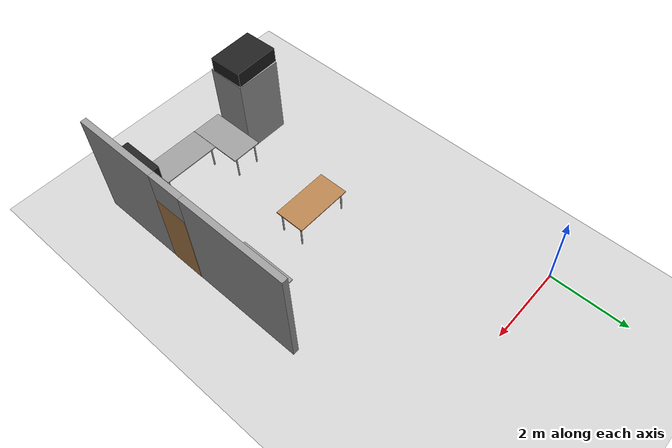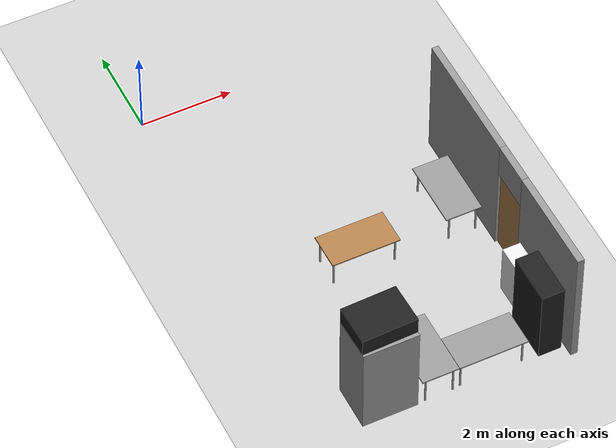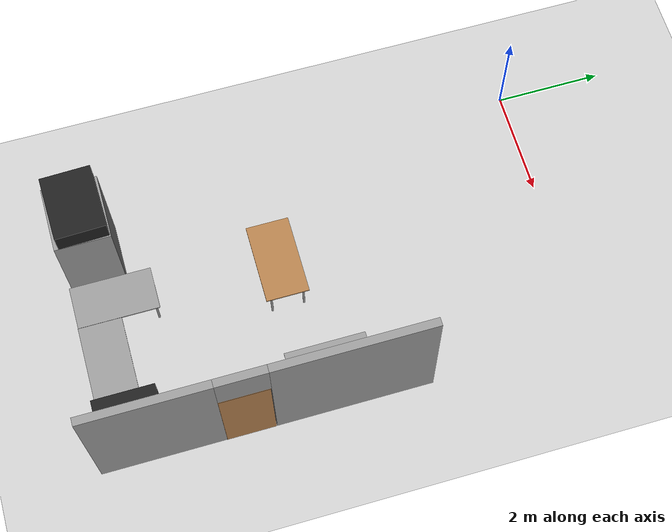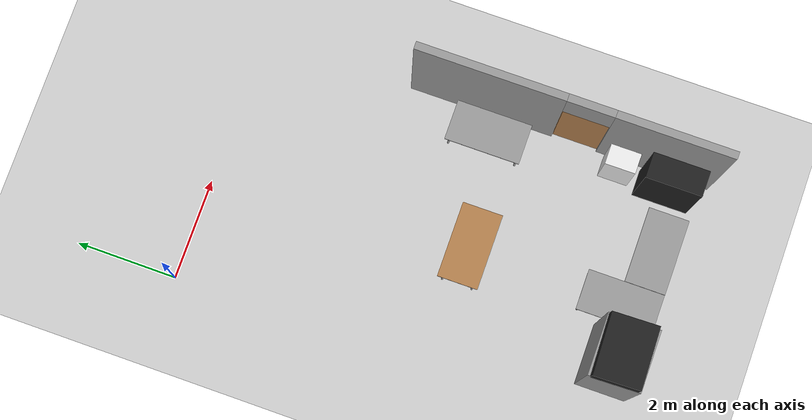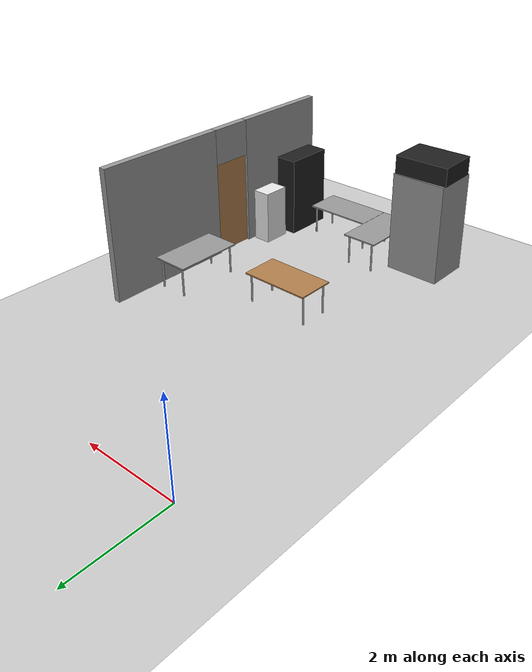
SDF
<sdf version="1.6">
 <world name="default">
  <model name="ground_plane">
   <static>1</static>
   <link name="link">
    <collision name="collision">
     <geometry><plane><normal>0 0 1</normal><size>100 100</size></plane></geometry>
     <surface>
      <contact><collide_bitmask>65535</collide_bitmask></contact>
      <friction><ode><mu>100</mu><mu2>50</mu2></ode></friction>
     </surface>
    </collision>
    <visual name="visual">
     <cast_shadows>0</cast_shadows>
     <geometry><plane><normal>0 0 1</normal><size>100 100</size></plane></geometry>
     <material>
      <script><uri>file://media/materials/scripts/gazebo.material</uri><name>Gazebo/Grey</name></script>
     </material>
    </visual>
   </link>
  </model>
  <model name="nrsl">
   <link name="Wall_7">
    <pose>5.41 -2.97 0 0 -0 1.5708</pose>
    <visual name="Wall_7_Visual_0">
     <pose>-1.90776 0 1.45 0 -0 0</pose>
     <geometry><box><size>2.27448 0.15 2.9</size></box></geometry>
     <material>
      <script><uri>file://media/materials/scripts/gazebo.material</uri><name>Gazebo/Grey</name></script>
      <ambient>1 1 1 1</ambient>
     </material>
     <meta><layer>0</layer></meta>
    </visual>
    <visual name="Wall_7_Visual_1">
     <pose>1.59424 0 1.45 0 -0 0</pose>
     <geometry><box><size>2.90152 0.15 2.9</size></box></geometry>
     <material>
      <script><uri>file://media/materials/scripts/gazebo.material</uri><name>Gazebo/Grey</name></script>
      <ambient>1 1 1 1</ambient>
     </material>
     <meta><layer>0</layer></meta>
    </visual>
    <visual name="Wall_7_Visual_2">
     <pose>-0.313519 0 2.504 0 -0 0</pose>
     <geometry><box><size>0.914 0.15 0.792</size></box></geometry>
     <material>
      <script><uri>file://media/materials/scripts/gazebo.material</uri><name>Gazebo/Grey</name></script>
      <ambient>1 1 1 1</ambient>
     </material>
     <meta><layer>0</layer></meta>
    </visual>
    <collision name="Wall_7_Collision_0">
     <pose>-1.90776 0 1.45 0 -0 0</pose>
     <geometry><box><size>2.27448 0.15 2.9</size></box></geometry>
     <surface>
      <friction>
       <ode><mu>1</mu><mu2>1</mu2><fdir1>0 0 0</fdir1><slip1>0</slip1><slip2>0</slip2></ode>
       <torsional>
        <coefficient>1</coefficient>
        <patch_radius>0</patch_radius>
        <surface_radius>0</surface_radius>
        <use_patch_radius>1</use_patch_radius>
        <ode><slip>0</slip></ode>
       </torsional>
      </friction>
      <bounce><restitution_coefficient>0</restitution_coefficient><threshold>1e+06</threshold></bounce>
      <contact>
       <collide_without_contact>0</collide_without_contact>
       <collide_without_contact_bitmask>1</collide_without_contact_bitmask>
       <collide_bitmask>1</collide_bitmask>
       <ode>
        <soft_cfm>0</soft_cfm>
        <soft_erp>0.2</soft_erp>
        <kp>1e+13</kp>
        <kd>1</kd>
        <max_vel>0.01</max_vel>
        <min_depth>0</min_depth>
       </ode>
       <bullet>
        <split_impulse>1</split_impulse>
        <split_impulse_penetration_threshold>-0.01</split_impulse_penetration_threshold>
        <soft_cfm>0</soft_cfm>
        <soft_erp>0.2</soft_erp>
        <kp>1e+13</kp>
        <kd>1</kd>
       </bullet>
      </contact>
     </surface>
    </collision>
    <collision name="Wall_7_Collision_1">
     <pose>1.59424 0 1.45 0 -0 0</pose>
     <geometry><box><size>2.90152 0.15 2.9</size></box></geometry>
     <surface>
      <friction>
       <ode><mu>1</mu><mu2>1</mu2><fdir1>0 0 0</fdir1><slip1>0</slip1><slip2>0</slip2></ode>
       <torsional>
        <coefficient>1</coefficient>
        <patch_radius>0</patch_radius>
        <surface_radius>0</surface_radius>
        <use_patch_radius>1</use_patch_radius>
        <ode><slip>0</slip></ode>
       </torsional>
      </friction>
      <bounce><restitution_coefficient>0</restitution_coefficient><threshold>1e+06</threshold></bounce>
      <contact>
       <collide_without_contact>0</collide_without_contact>
       <collide_without_contact_bitmask>1</collide_without_contact_bitmask>
       <collide_bitmask>1</collide_bitmask>
       <ode>
        <soft_cfm>0</soft_cfm>
        <soft_erp>0.2</soft_erp>
        <kp>1e+13</kp>
        <kd>1</kd>
        <max_vel>0.01</max_vel>
        <min_depth>0</min_depth>
       </ode>
       <bullet>
        <split_impulse>1</split_impulse>
        <split_impulse_penetration_threshold>-0.01</split_impulse_penetration_threshold>
        <soft_cfm>0</soft_cfm>
        <soft_erp>0.2</soft_erp>
        <kp>1e+13</kp>
        <kd>1</kd>
       </bullet>
      </contact>
     </surface>
    </collision>
    <collision name="Wall_7_Collision_2">
     <pose>-0.313519 0 2.504 0 -0 0</pose>
     <geometry><box><size>0.914 0.15 0.792</size></box></geometry>
     <surface>
      <friction>
       <ode><mu>1</mu><mu2>1</mu2><fdir1>0 0 0</fdir1><slip1>0</slip1><slip2>0</slip2></ode>
       <torsional>
        <coefficient>1</coefficient>
        <patch_radius>0</patch_radius>
        <surface_radius>0</surface_radius>
        <use_patch_radius>1</use_patch_radius>
        <ode><slip>0</slip></ode>
       </torsional>
      </friction>
      <bounce><restitution_coefficient>0</restitution_coefficient><threshold>1e+06</threshold></bounce>
      <contact>
       <collide_without_contact>0</collide_without_contact>
       <collide_without_contact_bitmask>1</collide_without_contact_bitmask>
       <collide_bitmask>1</collide_bitmask>
       <ode>
        <soft_cfm>0</soft_cfm>
        <soft_erp>0.2</soft_erp>
        <kp>1e+13</kp>
        <kd>1</kd>
        <max_vel>0.01</max_vel>
        <min_depth>0</min_depth>
       </ode>
       <bullet>
        <split_impulse>1</split_impulse>
        <split_impulse_penetration_threshold>-0.01</split_impulse_penetration_threshold>
        <soft_cfm>0</soft_cfm>
        <soft_erp>0.2</soft_erp>
        <kp>1e+13</kp>
        <kd>1</kd>
       </bullet>
      </contact>
     </surface>
    </collision>
   </link>
   <static>1</static>
   <pose>-0.282297 -3.10716 0 0 -0 0</pose>
  </model>
  <model name="guizi_1_0">
   <link name="link">
    <inertial>
     <mass>1</mass>
     <inertia>
      <ixx>0.166667</ixx>
      <ixy>0</ixy>
      <ixz>0</ixz>
      <iyy>0.166667</iyy>
      <iyz>0</iyz>
      <izz>0.166667</izz>
     </inertia>
    </inertial>
    <visual name="visual">
     <geometry><box><size>0.5 1.1 1.8</size></box></geometry>
     <material>
      <script><name>Gazebo/Black</name><uri>file://media/materials/scripts/gazebo.material</uri></script>
     </material>
     <pose>0 0 0.9 0 -0 0</pose>
    </visual>
    <collision name="collision">
     <pose>0 0 0.9 0 -0 0</pose>
     <geometry><box><size>0.5 1.1 1.8</size></box></geometry>
     <surface>
      <friction>
       <ode><mu>1</mu><mu2>1</mu2><fdir1>0 0 0</fdir1><slip1>0</slip1><slip2>0</slip2></ode>
       <torsional>
        <coefficient>1</coefficient>
        <patch_radius>0</patch_radius>
        <surface_radius>0</surface_radius>
        <use_patch_radius>1</use_patch_radius>
        <ode><slip>0</slip></ode>
       </torsional>
      </friction>
      <bounce><restitution_coefficient>0</restitution_coefficient><threshold>1e+06</threshold></bounce>
      <contact>
       <collide_without_contact>0</collide_without_contact>
       <collide_without_contact_bitmask>1</collide_without_contact_bitmask>
       <collide_bitmask>1</collide_bitmask>
       <ode>
        <soft_cfm>0</soft_cfm>
        <soft_erp>0.2</soft_erp>
        <kp>1e+13</kp>
        <kd>1</kd>
        <max_vel>0.01</max_vel>
        <min_depth>0</min_depth>
       </ode>
       <bullet>
        <split_impulse>1</split_impulse>
        <split_impulse_penetration_threshold>-0.01</split_impulse_penetration_threshold>
        <soft_cfm>0</soft_cfm>
        <soft_erp>0.2</soft_erp>
        <kp>1e+13</kp>
        <kd>1</kd>
       </bullet>
      </contact>
     </surface>
    </collision>
   </link>
   <static>0</static>
   <pose>4.7204 -8.32228 -0 0 -0 0</pose>
  </model>
  <model name="table_9">
   <link name="link">
    <pose>0 0 0 0 -0 1.57</pose>
    <visual name="visual1">
     <pose>0 0 0.67 0 -0 0</pose>
     <geometry><box><size>1.5 0.8 0.03</size></box></geometry>
     <material>
      <script><uri>file://media/materials/scripts/gazebo.material</uri><name>Gazebo/Grey</name></script>
     </material>
    </visual>
    <visual name="front_left_leg">
     <pose>0.68 0.3 0.335 0 -0 0</pose>
     <geometry><cylinder><radius>0.02</radius><length>0.67</length></cylinder></geometry>
     <material>
      <script><uri>file://media/materials/scripts/gazebo.material</uri><name>Gazebo/Grey</name></script>
     </material>
    </visual>
    <visual name="front_right_leg">
     <pose>0.68 -0.3 0.335 0 -0 0</pose>
     <geometry><cylinder><radius>0.02</radius><length>0.67</length></cylinder></geometry>
     <material>
      <script><uri>file://media/materials/scripts/gazebo.material</uri><name>Gazebo/Grey</name></script>
     </material>
    </visual>
    <visual name="back_right_leg">
     <pose>-0.68 -0.3 0.335 0 -0 0</pose>
     <geometry><cylinder><radius>0.02</radius><length>0.67</length></cylinder></geometry>
     <material>
      <script><uri>file://media/materials/scripts/gazebo.material</uri><name>Gazebo/Grey</name></script>
     </material>
    </visual>
    <visual name="back_left_leg">
     <pose>-0.68 0.3 0.335 0 -0 0</pose>
     <geometry><cylinder><radius>0.02</radius><length>0.67</length></cylinder></geometry>
     <material>
      <script><uri>file://media/materials/scripts/gazebo.material</uri><name>Gazebo/Grey</name></script>
     </material>
    </visual>
    <collision name="surface">
     <pose>0 0 0.67 0 -0 0</pose>
     <geometry><box><size>1.5 0.8 0.03</size></box></geometry>
     <surface>
      <friction>
       <ode><mu>0.6</mu><mu2>0.6</mu2><fdir1>0 0 0</fdir1><slip1>0</slip1><slip2>0</slip2></ode>
       <torsional>
        <coefficient>1</coefficient>
        <patch_radius>0</patch_radius>
        <surface_radius>0</surface_radius>
        <use_patch_radius>1</use_patch_radius>
        <ode><slip>0</slip></ode>
       </torsional>
      </friction>
      <bounce><restitution_coefficient>0</restitution_coefficient><threshold>1e+06</threshold></bounce>
      <contact>
       <collide_without_contact>0</collide_without_contact>
       <collide_without_contact_bitmask>1</collide_without_contact_bitmask>
       <collide_bitmask>1</collide_bitmask>
       <ode>
        <soft_cfm>0</soft_cfm>
        <soft_erp>0.2</soft_erp>
        <kp>1e+13</kp>
        <kd>1</kd>
        <max_vel>0.01</max_vel>
        <min_depth>0</min_depth>
       </ode>
       <bullet>
        <split_impulse>1</split_impulse>
        <split_impulse_penetration_threshold>-0.01</split_impulse_penetration_threshold>
        <soft_cfm>0</soft_cfm>
        <soft_erp>0.2</soft_erp>
        <kp>1e+13</kp>
        <kd>1</kd>
       </bullet>
      </contact>
     </surface>
    </collision>
    <collision name="front_left_leg">
     <pose>0.68 0.3 0.335 0 -0 0</pose>
     <geometry><cylinder><radius>0.02</radius><length>0.67</length></cylinder></geometry>
     <surface>
      <friction>
       <ode><mu>1</mu><mu2>1</mu2><fdir1>0 0 0</fdir1><slip1>0</slip1><slip2>0</slip2></ode>
       <torsional>
        <coefficient>1</coefficient>
        <patch_radius>0</patch_radius>
        <surface_radius>0</surface_radius>
        <use_patch_radius>1</use_patch_radius>
        <ode><slip>0</slip></ode>
       </torsional>
      </friction>
      <bounce><restitution_coefficient>0</restitution_coefficient><threshold>1e+06</threshold></bounce>
      <contact>
       <collide_without_contact>0</collide_without_contact>
       <collide_without_contact_bitmask>1</collide_without_contact_bitmask>
       <collide_bitmask>1</collide_bitmask>
       <ode>
        <soft_cfm>0</soft_cfm>
        <soft_erp>0.2</soft_erp>
        <kp>1e+13</kp>
        <kd>1</kd>
        <max_vel>0.01</max_vel>
        <min_depth>0</min_depth>
       </ode>
       <bullet>
        <split_impulse>1</split_impulse>
        <split_impulse_penetration_threshold>-0.01</split_impulse_penetration_threshold>
        <soft_cfm>0</soft_cfm>
        <soft_erp>0.2</soft_erp>
        <kp>1e+13</kp>
        <kd>1</kd>
       </bullet>
      </contact>
     </surface>
    </collision>
    <collision name="front_right_leg">
     <pose>0.68 -0.3 0.335 0 -0 0</pose>
     <geometry><cylinder><radius>0.02</radius><length>0.67</length></cylinder></geometry>
     <surface>
      <friction>
       <ode><mu>1</mu><mu2>1</mu2><fdir1>0 0 0</fdir1><slip1>0</slip1><slip2>0</slip2></ode>
       <torsional>
        <coefficient>1</coefficient>
        <patch_radius>0</patch_radius>
        <surface_radius>0</surface_radius>
        <use_patch_radius>1</use_patch_radius>
        <ode><slip>0</slip></ode>
       </torsional>
      </friction>
      <bounce><restitution_coefficient>0</restitution_coefficient><threshold>1e+06</threshold></bounce>
      <contact>
       <collide_without_contact>0</collide_without_contact>
       <collide_without_contact_bitmask>1</collide_without_contact_bitmask>
       <collide_bitmask>1</collide_bitmask>
       <ode>
        <soft_cfm>0</soft_cfm>
        <soft_erp>0.2</soft_erp>
        <kp>1e+13</kp>
        <kd>1</kd>
        <max_vel>0.01</max_vel>
        <min_depth>0</min_depth>
       </ode>
       <bullet>
        <split_impulse>1</split_impulse>
        <split_impulse_penetration_threshold>-0.01</split_impulse_penetration_threshold>
        <soft_cfm>0</soft_cfm>
        <soft_erp>0.2</soft_erp>
        <kp>1e+13</kp>
        <kd>1</kd>
       </bullet>
      </contact>
     </surface>
    </collision>
    <collision name="back_right_leg">
     <pose>-0.68 -0.3 0.335 0 -0 0</pose>
     <geometry><cylinder><radius>0.02</radius><length>0.67</length></cylinder></geometry>
     <surface>
      <friction>
       <ode><mu>1</mu><mu2>1</mu2><fdir1>0 0 0</fdir1><slip1>0</slip1><slip2>0</slip2></ode>
       <torsional>
        <coefficient>1</coefficient>
        <patch_radius>0</patch_radius>
        <surface_radius>0</surface_radius>
        <use_patch_radius>1</use_patch_radius>
        <ode><slip>0</slip></ode>
       </torsional>
      </friction>
      <bounce><restitution_coefficient>0</restitution_coefficient><threshold>1e+06</threshold></bounce>
      <contact>
       <collide_without_contact>0</collide_without_contact>
       <collide_without_contact_bitmask>1</collide_without_contact_bitmask>
       <collide_bitmask>1</collide_bitmask>
       <ode>
        <soft_cfm>0</soft_cfm>
        <soft_erp>0.2</soft_erp>
        <kp>1e+13</kp>
        <kd>1</kd>
        <max_vel>0.01</max_vel>
        <min_depth>0</min_depth>
       </ode>
       <bullet>
        <split_impulse>1</split_impulse>
        <split_impulse_penetration_threshold>-0.01</split_impulse_penetration_threshold>
        <soft_cfm>0</soft_cfm>
        <soft_erp>0.2</soft_erp>
        <kp>1e+13</kp>
        <kd>1</kd>
       </bullet>
      </contact>
     </surface>
    </collision>
    <collision name="back_left_leg">
     <pose>-0.68 0.3 0.335 0 -0 0</pose>
     <geometry><cylinder><radius>0.02</radius><length>0.67</length></cylinder></geometry>
     <surface>
      <friction>
       <ode><mu>1</mu><mu2>1</mu2><fdir1>0 0 0</fdir1><slip1>0</slip1><slip2>0</slip2></ode>
       <torsional>
        <coefficient>1</coefficient>
        <patch_radius>0</patch_radius>
        <surface_radius>0</surface_radius>
        <use_patch_radius>1</use_patch_radius>
        <ode><slip>0</slip></ode>
       </torsional>
      </friction>
      <bounce><restitution_coefficient>0</restitution_coefficient><threshold>1e+06</threshold></bounce>
      <contact>
       <collide_without_contact>0</collide_without_contact>
       <collide_without_contact_bitmask>1</collide_without_contact_bitmask>
       <collide_bitmask>1</collide_bitmask>
       <ode>
        <soft_cfm>0</soft_cfm>
        <soft_erp>0.2</soft_erp>
        <kp>1e+13</kp>
        <kd>1</kd>
        <max_vel>0.01</max_vel>
        <min_depth>0</min_depth>
       </ode>
       <bullet>
        <split_impulse>1</split_impulse>
        <split_impulse_penetration_threshold>-0.01</split_impulse_penetration_threshold>
        <soft_cfm>0</soft_cfm>
        <soft_erp>0.2</soft_erp>
        <kp>1e+13</kp>
        <kd>1</kd>
       </bullet>
      </contact>
     </surface>
    </collision>
   </link>
   <static>1</static>
   <pose>4.56581 -4.75909 0 0 -0 0</pose>
  </model>
  <model name="table_6">
   <link name="link">
    <visual name="visual1">
     <pose>0 0 0.67 0 -0 0</pose>
     <geometry><box><size>1.5 0.8 0.03</size></box></geometry>
     <material>
      <script><uri>file://media/materials/scripts/gazebo.material</uri><name>Gazebo/Wood</name></script>
     </material>
    </visual>
    <visual name="front_left_leg">
     <pose>0.68 0.3 0.335 0 -0 0</pose>
     <geometry><cylinder><radius>0.02</radius><length>0.67</length></cylinder></geometry>
     <material>
      <script><uri>file://media/materials/scripts/gazebo.material</uri><name>Gazebo/Grey</name></script>
     </material>
    </visual>
    <visual name="front_right_leg">
     <pose>0.68 -0.3 0.335 0 -0 0</pose>
     <geometry><cylinder><radius>0.02</radius><length>0.67</length></cylinder></geometry>
     <material>
      <script><uri>file://media/materials/scripts/gazebo.material</uri><name>Gazebo/Grey</name></script>
     </material>
    </visual>
    <visual name="back_right_leg">
     <pose>-0.68 -0.3 0.335 0 -0 0</pose>
     <geometry><cylinder><radius>0.02</radius><length>0.67</length></cylinder></geometry>
     <material>
      <script><uri>file://media/materials/scripts/gazebo.material</uri><name>Gazebo/Grey</name></script>
     </material>
    </visual>
    <visual name="back_left_leg">
     <pose>-0.68 0.3 0.335 0 -0 0</pose>
     <geometry><cylinder><radius>0.02</radius><length>0.67</length></cylinder></geometry>
     <material>
      <script><uri>file://media/materials/scripts/gazebo.material</uri><name>Gazebo/Grey</name></script>
     </material>
    </visual>
    <collision name="surface">
     <pose>0 0 0.67 0 -0 0</pose>
     <geometry><box><size>1.5 0.8 0.03</size></box></geometry>
     <surface>
      <friction>
       <ode><mu>0.6</mu><mu2>0.6</mu2><fdir1>0 0 0</fdir1><slip1>0</slip1><slip2>0</slip2></ode>
       <torsional>
        <coefficient>1</coefficient>
        <patch_radius>0</patch_radius>
        <surface_radius>0</surface_radius>
        <use_patch_radius>1</use_patch_radius>
        <ode><slip>0</slip></ode>
       </torsional>
      </friction>
      <bounce><restitution_coefficient>0</restitution_coefficient><threshold>1e+06</threshold></bounce>
      <contact>
       <collide_without_contact>0</collide_without_contact>
       <collide_without_contact_bitmask>1</collide_without_contact_bitmask>
       <collide_bitmask>1</collide_bitmask>
       <ode>
        <soft_cfm>0</soft_cfm>
        <soft_erp>0.2</soft_erp>
        <kp>1e+13</kp>
        <kd>1</kd>
        <max_vel>0.01</max_vel>
        <min_depth>0</min_depth>
       </ode>
       <bullet>
        <split_impulse>1</split_impulse>
        <split_impulse_penetration_threshold>-0.01</split_impulse_penetration_threshold>
        <soft_cfm>0</soft_cfm>
        <soft_erp>0.2</soft_erp>
        <kp>1e+13</kp>
        <kd>1</kd>
       </bullet>
      </contact>
     </surface>
    </collision>
    <collision name="front_left_leg">
     <pose>0.68 0.3 0.335 0 -0 0</pose>
     <geometry><cylinder><radius>0.02</radius><length>0.67</length></cylinder></geometry>
     <surface>
      <friction>
       <ode><mu>1</mu><mu2>1</mu2><fdir1>0 0 0</fdir1><slip1>0</slip1><slip2>0</slip2></ode>
       <torsional>
        <coefficient>1</coefficient>
        <patch_radius>0</patch_radius>
        <surface_radius>0</surface_radius>
        <use_patch_radius>1</use_patch_radius>
        <ode><slip>0</slip></ode>
       </torsional>
      </friction>
      <bounce><restitution_coefficient>0</restitution_coefficient><threshold>1e+06</threshold></bounce>
      <contact>
       <collide_without_contact>0</collide_without_contact>
       <collide_without_contact_bitmask>1</collide_without_contact_bitmask>
       <collide_bitmask>1</collide_bitmask>
       <ode>
        <soft_cfm>0</soft_cfm>
        <soft_erp>0.2</soft_erp>
        <kp>1e+13</kp>
        <kd>1</kd>
        <max_vel>0.01</max_vel>
        <min_depth>0</min_depth>
       </ode>
       <bullet>
        <split_impulse>1</split_impulse>
        <split_impulse_penetration_threshold>-0.01</split_impulse_penetration_threshold>
        <soft_cfm>0</soft_cfm>
        <soft_erp>0.2</soft_erp>
        <kp>1e+13</kp>
        <kd>1</kd>
       </bullet>
      </contact>
     </surface>
    </collision>
    <collision name="front_right_leg">
     <pose>0.68 -0.3 0.335 0 -0 0</pose>
     <geometry><cylinder><radius>0.02</radius><length>0.67</length></cylinder></geometry>
     <surface>
      <friction>
       <ode><mu>1</mu><mu2>1</mu2><fdir1>0 0 0</fdir1><slip1>0</slip1><slip2>0</slip2></ode>
       <torsional>
        <coefficient>1</coefficient>
        <patch_radius>0</patch_radius>
        <surface_radius>0</surface_radius>
        <use_patch_radius>1</use_patch_radius>
        <ode><slip>0</slip></ode>
       </torsional>
      </friction>
      <bounce><restitution_coefficient>0</restitution_coefficient><threshold>1e+06</threshold></bounce>
      <contact>
       <collide_without_contact>0</collide_without_contact>
       <collide_without_contact_bitmask>1</collide_without_contact_bitmask>
       <collide_bitmask>1</collide_bitmask>
       <ode>
        <soft_cfm>0</soft_cfm>
        <soft_erp>0.2</soft_erp>
        <kp>1e+13</kp>
        <kd>1</kd>
        <max_vel>0.01</max_vel>
        <min_depth>0</min_depth>
       </ode>
       <bullet>
        <split_impulse>1</split_impulse>
        <split_impulse_penetration_threshold>-0.01</split_impulse_penetration_threshold>
        <soft_cfm>0</soft_cfm>
        <soft_erp>0.2</soft_erp>
        <kp>1e+13</kp>
        <kd>1</kd>
       </bullet>
      </contact>
     </surface>
    </collision>
    <collision name="back_right_leg">
     <pose>-0.68 -0.3 0.335 0 -0 0</pose>
     <geometry><cylinder><radius>0.02</radius><length>0.67</length></cylinder></geometry>
     <surface>
      <friction>
       <ode><mu>1</mu><mu2>1</mu2><fdir1>0 0 0</fdir1><slip1>0</slip1><slip2>0</slip2></ode>
       <torsional>
        <coefficient>1</coefficient>
        <patch_radius>0</patch_radius>
        <surface_radius>0</surface_radius>
        <use_patch_radius>1</use_patch_radius>
        <ode><slip>0</slip></ode>
       </torsional>
      </friction>
      <bounce><restitution_coefficient>0</restitution_coefficient><threshold>1e+06</threshold></bounce>
      <contact>
       <collide_without_contact>0</collide_without_contact>
       <collide_without_contact_bitmask>1</collide_without_contact_bitmask>
       <collide_bitmask>1</collide_bitmask>
       <ode>
        <soft_cfm>0</soft_cfm>
        <soft_erp>0.2</soft_erp>
        <kp>1e+13</kp>
        <kd>1</kd>
        <max_vel>0.01</max_vel>
        <min_depth>0</min_depth>
       </ode>
       <bullet>
        <split_impulse>1</split_impulse>
        <split_impulse_penetration_threshold>-0.01</split_impulse_penetration_threshold>
        <soft_cfm>0</soft_cfm>
        <soft_erp>0.2</soft_erp>
        <kp>1e+13</kp>
        <kd>1</kd>
       </bullet>
      </contact>
     </surface>
    </collision>
    <collision name="back_left_leg">
     <pose>-0.68 0.3 0.335 0 -0 0</pose>
     <geometry><cylinder><radius>0.02</radius><length>0.67</length></cylinder></geometry>
     <surface>
      <friction>
       <ode><mu>1</mu><mu2>1</mu2><fdir1>0 0 0</fdir1><slip1>0</slip1><slip2>0</slip2></ode>
       <torsional>
        <coefficient>1</coefficient>
        <patch_radius>0</patch_radius>
        <surface_radius>0</surface_radius>
        <use_patch_radius>1</use_patch_radius>
        <ode><slip>0</slip></ode>
       </torsional>
      </friction>
      <bounce><restitution_coefficient>0</restitution_coefficient><threshold>1e+06</threshold></bounce>
      <contact>
       <collide_without_contact>0</collide_without_contact>
       <collide_without_contact_bitmask>1</collide_without_contact_bitmask>
       <collide_bitmask>1</collide_bitmask>
       <ode>
        <soft_cfm>0</soft_cfm>
        <soft_erp>0.2</soft_erp>
        <kp>1e+13</kp>
        <kd>1</kd>
        <max_vel>0.01</max_vel>
        <min_depth>0</min_depth>
       </ode>
       <bullet>
        <split_impulse>1</split_impulse>
        <split_impulse_penetration_threshold>-0.01</split_impulse_penetration_threshold>
        <soft_cfm>0</soft_cfm>
        <soft_erp>0.2</soft_erp>
        <kp>1e+13</kp>
        <kd>1</kd>
       </bullet>
      </contact>
     </surface>
    </collision>
   </link>
   <static>1</static>
   <pose>2.37181 -5.14727 0 0 -0 0</pose>
  </model>
  <model name="table_6_0">
   <link name="link">
    <pose>0 0 0 0 -0 1.57</pose>
    <visual name="visual1">
     <pose>0 0 0.67 0 -0 0</pose>
     <geometry><box><size>1.5 0.8 0.03</size></box></geometry>
     <material>
      <script><uri>file://media/materials/scripts/gazebo.material</uri><name>Gazebo/Grey</name></script>
     </material>
    </visual>
    <visual name="front_left_leg">
     <pose>0.68 0.3 0.335 0 -0 0</pose>
     <geometry><cylinder><radius>0.02</radius><length>0.67</length></cylinder></geometry>
     <material>
      <script><uri>file://media/materials/scripts/gazebo.material</uri><name>Gazebo/Grey</name></script>
     </material>
    </visual>
    <visual name="front_right_leg">
     <pose>0.68 -0.3 0.335 0 -0 0</pose>
     <geometry><cylinder><radius>0.02</radius><length>0.67</length></cylinder></geometry>
     <material>
      <script><uri>file://media/materials/scripts/gazebo.material</uri><name>Gazebo/Grey</name></script>
     </material>
    </visual>
    <visual name="back_right_leg">
     <pose>-0.68 -0.3 0.335 0 -0 0</pose>
     <geometry><cylinder><radius>0.02</radius><length>0.67</length></cylinder></geometry>
     <material>
      <script><uri>file://media/materials/scripts/gazebo.material</uri><name>Gazebo/Grey</name></script>
     </material>
    </visual>
    <visual name="back_left_leg">
     <pose>-0.68 0.3 0.335 0 -0 0</pose>
     <geometry><cylinder><radius>0.02</radius><length>0.67</length></cylinder></geometry>
     <material>
      <script><uri>file://media/materials/scripts/gazebo.material</uri><name>Gazebo/Grey</name></script>
     </material>
    </visual>
    <collision name="surface">
     <pose>0 0 0.67 0 -0 0</pose>
     <geometry><box><size>1.5 0.8 0.03</size></box></geometry>
     <surface>
      <friction>
       <ode><mu>0.6</mu><mu2>0.6</mu2><fdir1>0 0 0</fdir1><slip1>0</slip1><slip2>0</slip2></ode>
       <torsional>
        <coefficient>1</coefficient>
        <patch_radius>0</patch_radius>
        <surface_radius>0</surface_radius>
        <use_patch_radius>1</use_patch_radius>
        <ode><slip>0</slip></ode>
       </torsional>
      </friction>
      <bounce><restitution_coefficient>0</restitution_coefficient><threshold>1e+06</threshold></bounce>
      <contact>
       <collide_without_contact>0</collide_without_contact>
       <collide_without_contact_bitmask>1</collide_without_contact_bitmask>
       <collide_bitmask>1</collide_bitmask>
       <ode>
        <soft_cfm>0</soft_cfm>
        <soft_erp>0.2</soft_erp>
        <kp>1e+13</kp>
        <kd>1</kd>
        <max_vel>0.01</max_vel>
        <min_depth>0</min_depth>
       </ode>
       <bullet>
        <split_impulse>1</split_impulse>
        <split_impulse_penetration_threshold>-0.01</split_impulse_penetration_threshold>
        <soft_cfm>0</soft_cfm>
        <soft_erp>0.2</soft_erp>
        <kp>1e+13</kp>
        <kd>1</kd>
       </bullet>
      </contact>
     </surface>
    </collision>
    <collision name="front_left_leg">
     <pose>0.68 0.3 0.335 0 -0 0</pose>
     <geometry><cylinder><radius>0.02</radius><length>0.67</length></cylinder></geometry>
     <surface>
      <friction>
       <ode><mu>1</mu><mu2>1</mu2><fdir1>0 0 0</fdir1><slip1>0</slip1><slip2>0</slip2></ode>
       <torsional>
        <coefficient>1</coefficient>
        <patch_radius>0</patch_radius>
        <surface_radius>0</surface_radius>
        <use_patch_radius>1</use_patch_radius>
        <ode><slip>0</slip></ode>
       </torsional>
      </friction>
      <bounce><restitution_coefficient>0</restitution_coefficient><threshold>1e+06</threshold></bounce>
      <contact>
       <collide_without_contact>0</collide_without_contact>
       <collide_without_contact_bitmask>1</collide_without_contact_bitmask>
       <collide_bitmask>1</collide_bitmask>
       <ode>
        <soft_cfm>0</soft_cfm>
        <soft_erp>0.2</soft_erp>
        <kp>1e+13</kp>
        <kd>1</kd>
        <max_vel>0.01</max_vel>
        <min_depth>0</min_depth>
       </ode>
       <bullet>
        <split_impulse>1</split_impulse>
        <split_impulse_penetration_threshold>-0.01</split_impulse_penetration_threshold>
        <soft_cfm>0</soft_cfm>
        <soft_erp>0.2</soft_erp>
        <kp>1e+13</kp>
        <kd>1</kd>
       </bullet>
      </contact>
     </surface>
    </collision>
    <collision name="front_right_leg">
     <pose>0.68 -0.3 0.335 0 -0 0</pose>
     <geometry><cylinder><radius>0.02</radius><length>0.67</length></cylinder></geometry>
     <surface>
      <friction>
       <ode><mu>1</mu><mu2>1</mu2><fdir1>0 0 0</fdir1><slip1>0</slip1><slip2>0</slip2></ode>
       <torsional>
        <coefficient>1</coefficient>
        <patch_radius>0</patch_radius>
        <surface_radius>0</surface_radius>
        <use_patch_radius>1</use_patch_radius>
        <ode><slip>0</slip></ode>
       </torsional>
      </friction>
      <bounce><restitution_coefficient>0</restitution_coefficient><threshold>1e+06</threshold></bounce>
      <contact>
       <collide_without_contact>0</collide_without_contact>
       <collide_without_contact_bitmask>1</collide_without_contact_bitmask>
       <collide_bitmask>1</collide_bitmask>
       <ode>
        <soft_cfm>0</soft_cfm>
        <soft_erp>0.2</soft_erp>
        <kp>1e+13</kp>
        <kd>1</kd>
        <max_vel>0.01</max_vel>
        <min_depth>0</min_depth>
       </ode>
       <bullet>
        <split_impulse>1</split_impulse>
        <split_impulse_penetration_threshold>-0.01</split_impulse_penetration_threshold>
        <soft_cfm>0</soft_cfm>
        <soft_erp>0.2</soft_erp>
        <kp>1e+13</kp>
        <kd>1</kd>
       </bullet>
      </contact>
     </surface>
    </collision>
    <collision name="back_right_leg">
     <pose>-0.68 -0.3 0.335 0 -0 0</pose>
     <geometry><cylinder><radius>0.02</radius><length>0.67</length></cylinder></geometry>
     <surface>
      <friction>
       <ode><mu>1</mu><mu2>1</mu2><fdir1>0 0 0</fdir1><slip1>0</slip1><slip2>0</slip2></ode>
       <torsional>
        <coefficient>1</coefficient>
        <patch_radius>0</patch_radius>
        <surface_radius>0</surface_radius>
        <use_patch_radius>1</use_patch_radius>
        <ode><slip>0</slip></ode>
       </torsional>
      </friction>
      <bounce><restitution_coefficient>0</restitution_coefficient><threshold>1e+06</threshold></bounce>
      <contact>
       <collide_without_contact>0</collide_without_contact>
       <collide_without_contact_bitmask>1</collide_without_contact_bitmask>
       <collide_bitmask>1</collide_bitmask>
       <ode>
        <soft_cfm>0</soft_cfm>
        <soft_erp>0.2</soft_erp>
        <kp>1e+13</kp>
        <kd>1</kd>
        <max_vel>0.01</max_vel>
        <min_depth>0</min_depth>
       </ode>
       <bullet>
        <split_impulse>1</split_impulse>
        <split_impulse_penetration_threshold>-0.01</split_impulse_penetration_threshold>
        <soft_cfm>0</soft_cfm>
        <soft_erp>0.2</soft_erp>
        <kp>1e+13</kp>
        <kd>1</kd>
       </bullet>
      </contact>
     </surface>
    </collision>
    <collision name="back_left_leg">
     <pose>-0.68 0.3 0.335 0 -0 0</pose>
     <geometry><cylinder><radius>0.02</radius><length>0.67</length></cylinder></geometry>
     <surface>
      <friction>
       <ode><mu>1</mu><mu2>1</mu2><fdir1>0 0 0</fdir1><slip1>0</slip1><slip2>0</slip2></ode>
       <torsional>
        <coefficient>1</coefficient>
        <patch_radius>0</patch_radius>
        <surface_radius>0</surface_radius>
        <use_patch_radius>1</use_patch_radius>
        <ode><slip>0</slip></ode>
       </torsional>
      </friction>
      <bounce><restitution_coefficient>0</restitution_coefficient><threshold>1e+06</threshold></bounce>
      <contact>
       <collide_without_contact>0</collide_without_contact>
       <collide_without_contact_bitmask>1</collide_without_contact_bitmask>
       <collide_bitmask>1</collide_bitmask>
       <ode>
        <soft_cfm>0</soft_cfm>
        <soft_erp>0.2</soft_erp>
        <kp>1e+13</kp>
        <kd>1</kd>
        <max_vel>0.01</max_vel>
        <min_depth>0</min_depth>
       </ode>
       <bullet>
        <split_impulse>1</split_impulse>
        <split_impulse_penetration_threshold>-0.01</split_impulse_penetration_threshold>
        <soft_cfm>0</soft_cfm>
        <soft_erp>0.2</soft_erp>
        <kp>1e+13</kp>
        <kd>1</kd>
       </bullet>
      </contact>
     </surface>
    </collision>
   </link>
   <static>1</static>
   <pose>2.29808 -8.15857 0 0 -0 0</pose>
  </model>
  <model name="table_6_1">
   <link name="link">
    <visual name="visual1">
     <pose>0 0 0.67 0 -0 0</pose>
     <geometry><box><size>1.5 0.8 0.03</size></box></geometry>
     <material>
      <script><uri>file://media/materials/scripts/gazebo.material</uri><name>Gazebo/Grey</name></script>
     </material>
    </visual>
    <visual name="front_left_leg">
     <pose>0.68 0.3 0.335 0 -0 0</pose>
     <geometry><cylinder><radius>0.02</radius><length>0.67</length></cylinder></geometry>
     <material>
      <script><uri>file://media/materials/scripts/gazebo.material</uri><name>Gazebo/Grey</name></script>
     </material>
    </visual>
    <visual name="front_right_leg">
     <pose>0.68 -0.3 0.335 0 -0 0</pose>
     <geometry><cylinder><radius>0.02</radius><length>0.67</length></cylinder></geometry>
     <material>
      <script><uri>file://media/materials/scripts/gazebo.material</uri><name>Gazebo/Grey</name></script>
     </material>
    </visual>
    <visual name="back_right_leg">
     <pose>-0.68 -0.3 0.335 0 -0 0</pose>
     <geometry><cylinder><radius>0.02</radius><length>0.67</length></cylinder></geometry>
     <material>
      <script><uri>file://media/materials/scripts/gazebo.material</uri><name>Gazebo/Grey</name></script>
     </material>
    </visual>
    <visual name="back_left_leg">
     <pose>-0.68 0.3 0.335 0 -0 0</pose>
     <geometry><cylinder><radius>0.02</radius><length>0.67</length></cylinder></geometry>
     <material>
      <script><uri>file://media/materials/scripts/gazebo.material</uri><name>Gazebo/Grey</name></script>
     </material>
    </visual>
    <collision name="surface">
     <pose>0 0 0.67 0 -0 0</pose>
     <geometry><box><size>1.5 0.8 0.03</size></box></geometry>
     <surface>
      <friction>
       <ode><mu>0.6</mu><mu2>0.6</mu2><fdir1>0 0 0</fdir1><slip1>0</slip1><slip2>0</slip2></ode>
       <torsional>
        <coefficient>1</coefficient>
        <patch_radius>0</patch_radius>
        <surface_radius>0</surface_radius>
        <use_patch_radius>1</use_patch_radius>
        <ode><slip>0</slip></ode>
       </torsional>
      </friction>
      <bounce><restitution_coefficient>0</restitution_coefficient><threshold>1e+06</threshold></bounce>
      <contact>
       <collide_without_contact>0</collide_without_contact>
       <collide_without_contact_bitmask>1</collide_without_contact_bitmask>
       <collide_bitmask>1</collide_bitmask>
       <ode>
        <soft_cfm>0</soft_cfm>
        <soft_erp>0.2</soft_erp>
        <kp>1e+13</kp>
        <kd>1</kd>
        <max_vel>0.01</max_vel>
        <min_depth>0</min_depth>
       </ode>
       <bullet>
        <split_impulse>1</split_impulse>
        <split_impulse_penetration_threshold>-0.01</split_impulse_penetration_threshold>
        <soft_cfm>0</soft_cfm>
        <soft_erp>0.2</soft_erp>
        <kp>1e+13</kp>
        <kd>1</kd>
       </bullet>
      </contact>
     </surface>
    </collision>
    <collision name="front_left_leg">
     <pose>0.68 0.3 0.335 0 -0 0</pose>
     <geometry><cylinder><radius>0.02</radius><length>0.67</length></cylinder></geometry>
     <surface>
      <friction>
       <ode><mu>1</mu><mu2>1</mu2><fdir1>0 0 0</fdir1><slip1>0</slip1><slip2>0</slip2></ode>
       <torsional>
        <coefficient>1</coefficient>
        <patch_radius>0</patch_radius>
        <surface_radius>0</surface_radius>
        <use_patch_radius>1</use_patch_radius>
        <ode><slip>0</slip></ode>
       </torsional>
      </friction>
      <bounce><restitution_coefficient>0</restitution_coefficient><threshold>1e+06</threshold></bounce>
      <contact>
       <collide_without_contact>0</collide_without_contact>
       <collide_without_contact_bitmask>1</collide_without_contact_bitmask>
       <collide_bitmask>1</collide_bitmask>
       <ode>
        <soft_cfm>0</soft_cfm>
        <soft_erp>0.2</soft_erp>
        <kp>1e+13</kp>
        <kd>1</kd>
        <max_vel>0.01</max_vel>
        <min_depth>0</min_depth>
       </ode>
       <bullet>
        <split_impulse>1</split_impulse>
        <split_impulse_penetration_threshold>-0.01</split_impulse_penetration_threshold>
        <soft_cfm>0</soft_cfm>
        <soft_erp>0.2</soft_erp>
        <kp>1e+13</kp>
        <kd>1</kd>
       </bullet>
      </contact>
     </surface>
    </collision>
    <collision name="front_right_leg">
     <pose>0.68 -0.3 0.335 0 -0 0</pose>
     <geometry><cylinder><radius>0.02</radius><length>0.67</length></cylinder></geometry>
     <surface>
      <friction>
       <ode><mu>1</mu><mu2>1</mu2><fdir1>0 0 0</fdir1><slip1>0</slip1><slip2>0</slip2></ode>
       <torsional>
        <coefficient>1</coefficient>
        <patch_radius>0</patch_radius>
        <surface_radius>0</surface_radius>
        <use_patch_radius>1</use_patch_radius>
        <ode><slip>0</slip></ode>
       </torsional>
      </friction>
      <bounce><restitution_coefficient>0</restitution_coefficient><threshold>1e+06</threshold></bounce>
      <contact>
       <collide_without_contact>0</collide_without_contact>
       <collide_without_contact_bitmask>1</collide_without_contact_bitmask>
       <collide_bitmask>1</collide_bitmask>
       <ode>
        <soft_cfm>0</soft_cfm>
        <soft_erp>0.2</soft_erp>
        <kp>1e+13</kp>
        <kd>1</kd>
        <max_vel>0.01</max_vel>
        <min_depth>0</min_depth>
       </ode>
       <bullet>
        <split_impulse>1</split_impulse>
        <split_impulse_penetration_threshold>-0.01</split_impulse_penetration_threshold>
        <soft_cfm>0</soft_cfm>
        <soft_erp>0.2</soft_erp>
        <kp>1e+13</kp>
        <kd>1</kd>
       </bullet>
      </contact>
     </surface>
    </collision>
    <collision name="back_right_leg">
     <pose>-0.68 -0.3 0.335 0 -0 0</pose>
     <geometry><cylinder><radius>0.02</radius><length>0.67</length></cylinder></geometry>
     <surface>
      <friction>
       <ode><mu>1</mu><mu2>1</mu2><fdir1>0 0 0</fdir1><slip1>0</slip1><slip2>0</slip2></ode>
       <torsional>
        <coefficient>1</coefficient>
        <patch_radius>0</patch_radius>
        <surface_radius>0</surface_radius>
        <use_patch_radius>1</use_patch_radius>
        <ode><slip>0</slip></ode>
       </torsional>
      </friction>
      <bounce><restitution_coefficient>0</restitution_coefficient><threshold>1e+06</threshold></bounce>
      <contact>
       <collide_without_contact>0</collide_without_contact>
       <collide_without_contact_bitmask>1</collide_without_contact_bitmask>
       <collide_bitmask>1</collide_bitmask>
       <ode>
        <soft_cfm>0</soft_cfm>
        <soft_erp>0.2</soft_erp>
        <kp>1e+13</kp>
        <kd>1</kd>
        <max_vel>0.01</max_vel>
        <min_depth>0</min_depth>
       </ode>
       <bullet>
        <split_impulse>1</split_impulse>
        <split_impulse_penetration_threshold>-0.01</split_impulse_penetration_threshold>
        <soft_cfm>0</soft_cfm>
        <soft_erp>0.2</soft_erp>
        <kp>1e+13</kp>
        <kd>1</kd>
       </bullet>
      </contact>
     </surface>
    </collision>
    <collision name="back_left_leg">
     <pose>-0.68 0.3 0.335 0 -0 0</pose>
     <geometry><cylinder><radius>0.02</radius><length>0.67</length></cylinder></geometry>
     <surface>
      <friction>
       <ode><mu>1</mu><mu2>1</mu2><fdir1>0 0 0</fdir1><slip1>0</slip1><slip2>0</slip2></ode>
       <torsional>
        <coefficient>1</coefficient>
        <patch_radius>0</patch_radius>
        <surface_radius>0</surface_radius>
        <use_patch_radius>1</use_patch_radius>
        <ode><slip>0</slip></ode>
       </torsional>
      </friction>
      <bounce><restitution_coefficient>0</restitution_coefficient><threshold>1e+06</threshold></bounce>
      <contact>
       <collide_without_contact>0</collide_without_contact>
       <collide_without_contact_bitmask>1</collide_without_contact_bitmask>
       <collide_bitmask>1</collide_bitmask>
       <ode>
        <soft_cfm>0</soft_cfm>
        <soft_erp>0.2</soft_erp>
        <kp>1e+13</kp>
        <kd>1</kd>
        <max_vel>0.01</max_vel>
        <min_depth>0</min_depth>
       </ode>
       <bullet>
        <split_impulse>1</split_impulse>
        <split_impulse_penetration_threshold>-0.01</split_impulse_penetration_threshold>
        <soft_cfm>0</soft_cfm>
        <soft_erp>0.2</soft_erp>
        <kp>1e+13</kp>
        <kd>1</kd>
       </bullet>
      </contact>
     </surface>
    </collision>
   </link>
   <static>1</static>
   <pose>3.452 -8.51317 0 0 -0 0</pose>
  </model>
  <model name="guizi2">
   <link name="link">
    <inertial>
     <mass>1</mass>
     <inertia>
      <ixx>0.166667</ixx>
      <ixy>0</ixy>
      <ixz>0</ixz>
      <iyy>0.166667</iyy>
      <iyz>0</iyz>
      <izz>0.166667</izz>
     </inertia>
    </inertial>
    <visual name="visual">
     <geometry><box><size>1.2 1 2.2</size></box></geometry>
     <material>
      <script><name>Gazebo/Grey</name><uri>file://media/materials/scripts/gazebo.material</uri></script>
     </material>
     <pose>0 0 1.1 0 -0 0</pose>
    </visual>
    <collision name="collision">
     <pose>0 0 1.1 0 -0 0</pose>
     <geometry><box><size>1.2 1 2.2</size></box></geometry>
     <surface>
      <friction>
       <ode><mu>1</mu><mu2>1</mu2><fdir1>0 0 0</fdir1><slip1>0</slip1><slip2>0</slip2></ode>
       <torsional>
        <coefficient>1</coefficient>
        <patch_radius>0</patch_radius>
        <surface_radius>0</surface_radius>
        <use_patch_radius>1</use_patch_radius>
        <ode><slip>0</slip></ode>
       </torsional>
      </friction>
      <bounce><restitution_coefficient>0</restitution_coefficient><threshold>1e+06</threshold></bounce>
      <contact>
       <collide_without_contact>0</collide_without_contact>
       <collide_without_contact_bitmask>1</collide_without_contact_bitmask>
       <collide_bitmask>1</collide_bitmask>
       <ode>
        <soft_cfm>0</soft_cfm>
        <soft_erp>0.2</soft_erp>
        <kp>1e+13</kp>
        <kd>1</kd>
        <max_vel>0.01</max_vel>
        <min_depth>0</min_depth>
       </ode>
       <bullet>
        <split_impulse>1</split_impulse>
        <split_impulse_penetration_threshold>-0.01</split_impulse_penetration_threshold>
        <soft_cfm>0</soft_cfm>
        <soft_erp>0.2</soft_erp>
        <kp>1e+13</kp>
        <kd>1</kd>
       </bullet>
      </contact>
     </surface>
    </collision>
   </link>
   <static>0</static>
   <pose>1.22364 -8.37848 -0 1e-06 -2e-06 0.000538</pose>
  </model>
  <model name="guizi_0_0">
   <link name="link">
    <inertial>
     <mass>1</mass>
     <inertia>
      <ixx>0.166667</ixx>
      <ixy>0</ixy>
      <ixz>0</ixz>
      <iyy>0.166667</iyy>
      <iyz>0</iyz>
      <izz>0.166667</izz>
     </inertia>
    </inertial>
    <visual name="visual">
     <geometry><box><size>0.4 0.6 1.2</size></box></geometry>
     <material>
      <script><name>Gazebo/White</name><uri>file://media/materials/scripts/gazebo.material</uri></script>
     </material>
     <pose>0 0 0.6 0 -0 0</pose>
    </visual>
    <collision name="collision">
     <pose>0 0 0.6 0 -0 0</pose>
     <geometry><box><size>0.4 0.6 1.2</size></box></geometry>
     <surface>
      <friction>
       <ode><mu>1</mu><mu2>1</mu2><fdir1>0 0 0</fdir1><slip1>0</slip1><slip2>0</slip2></ode>
       <torsional>
        <coefficient>1</coefficient>
        <patch_radius>0</patch_radius>
        <surface_radius>0</surface_radius>
        <use_patch_radius>1</use_patch_radius>
        <ode><slip>0</slip></ode>
       </torsional>
      </friction>
      <bounce><restitution_coefficient>0</restitution_coefficient><threshold>1e+06</threshold></bounce>
      <contact>
       <collide_without_contact>0</collide_without_contact>
       <collide_without_contact_bitmask>1</collide_without_contact_bitmask>
       <collide_bitmask>1</collide_bitmask>
       <ode>
        <soft_cfm>0</soft_cfm>
        <soft_erp>0.2</soft_erp>
        <kp>1e+13</kp>
        <kd>1</kd>
        <max_vel>0.01</max_vel>
        <min_depth>0</min_depth>
       </ode>
       <bullet>
        <split_impulse>1</split_impulse>
        <split_impulse_penetration_threshold>-0.01</split_impulse_penetration_threshold>
        <soft_cfm>0</soft_cfm>
        <soft_erp>0.2</soft_erp>
        <kp>1e+13</kp>
        <kd>1</kd>
       </bullet>
      </contact>
     </surface>
    </collision>
   </link>
   <static>0</static>
   <pose>4.80663 -7.32327 -0 0 -0 0</pose>
  </model>
  <model name="door">
   <link name="link">
    <inertial>
     <mass>1</mass>
     <inertia>
      <ixx>0.166667</ixx>
      <ixy>0</ixy>
      <ixz>0</ixz>
      <iyy>0.166667</iyy>
      <iyz>0</iyz>
      <izz>0.166667</izz>
     </inertia>
    </inertial>
    <visual name="visual">
     <geometry><box><size>0.1 0.9 2.1</size></box></geometry>
     <material>
      <script><name>Gazebo/Wood</name><uri>file://media/materials/scripts/gazebo.material</uri></script>
     </material>
     <pose>0 0 1.05 0 -0 0</pose>
    </visual>
    <collision name="collision">
     <pose>0 0 1.05 0 -0 0</pose>
     <geometry><box><size>0.1 0.9 2.1</size></box></geometry>
     <surface>
      <friction>
       <ode><mu>1</mu><mu2>1</mu2><fdir1>0 0 0</fdir1><slip1>0</slip1><slip2>0</slip2></ode>
       <torsional>
        <coefficient>1</coefficient>
        <patch_radius>0</patch_radius>
        <surface_radius>0</surface_radius>
        <use_patch_radius>1</use_patch_radius>
        <ode><slip>0</slip></ode>
       </torsional>
      </friction>
      <bounce><restitution_coefficient>0</restitution_coefficient><threshold>1e+06</threshold></bounce>
      <contact>
       <collide_without_contact>0</collide_without_contact>
       <collide_without_contact_bitmask>1</collide_without_contact_bitmask>
       <collide_bitmask>1</collide_bitmask>
       <ode>
        <soft_cfm>0</soft_cfm>
        <soft_erp>0.2</soft_erp>
        <kp>1e+13</kp>
        <kd>1</kd>
        <max_vel>0.01</max_vel>
        <min_depth>0</min_depth>
       </ode>
       <bullet>
        <split_impulse>1</split_impulse>
        <split_impulse_penetration_threshold>-0.01</split_impulse_penetration_threshold>
        <soft_cfm>0</soft_cfm>
        <soft_erp>0.2</soft_erp>
        <kp>1e+13</kp>
        <kd>1</kd>
       </bullet>
      </contact>
     </surface>
    </collision>
   </link>
   <static>0</static>
   <pose>5.15704 -6.39694 -3e-06 -8e-06 0 0</pose>
  </model>
  <model name="airconsitioner1">
   <link name="link">
    <inertial>
     <mass>1</mass>
     <inertia>
      <ixx>0.166667</ixx>
      <ixy>0</ixy>
      <ixz>0</ixz>
      <iyy>0.166667</iyy>
      <iyz>0</iyz>
      <izz>0.166667</izz>
     </inertia>
    </inertial>
    <visual name="visual">
     <geometry><box><size>1.2 0.9 0.4</size></box></geometry>
     <material>
      <script><name>Gazebo/Black</name><uri>file://media/materials/scripts/gazebo.material</uri></script>
     </material>
     <pose>0 0 2.6 0 -0 0</pose>
    </visual>
    <collision name="collision">
     <pose>0 0 2.6 0 -0 0</pose>
     <geometry><box><size>1.2 0.9 0.4</size></box></geometry>
     <surface>
      <friction>
       <ode><mu>1</mu><mu2>1</mu2><fdir1>0 0 0</fdir1><slip1>0</slip1><slip2>0</slip2></ode>
       <torsional>
        <coefficient>1</coefficient>
        <patch_radius>0</patch_radius>
        <surface_radius>0</surface_radius>
        <use_patch_radius>1</use_patch_radius>
        <ode><slip>0</slip></ode>
       </torsional>
      </friction>
      <bounce><restitution_coefficient>0</restitution_coefficient><threshold>1e+06</threshold></bounce>
      <contact>
       <collide_without_contact>0</collide_without_contact>
       <collide_without_contact_bitmask>1</collide_without_contact_bitmask>
       <collide_bitmask>1</collide_bitmask>
       <ode>
        <soft_cfm>0</soft_cfm>
        <soft_erp>0.2</soft_erp>
        <kp>1e+13</kp>
        <kd>1</kd>
        <max_vel>0.01</max_vel>
        <min_depth>0</min_depth>
       </ode>
       <bullet>
        <split_impulse>1</split_impulse>
        <split_impulse_penetration_threshold>-0.01</split_impulse_penetration_threshold>
        <soft_cfm>0</soft_cfm>
        <soft_erp>0.2</soft_erp>
        <kp>1e+13</kp>
        <kd>1</kd>
       </bullet>
      </contact>
     </surface>
    </collision>
   </link>
   <static>0</static>
   <pose>1.21261 -8.36104 -0.200002 2e-06 2e-06 0.027285</pose>
  </model>
 </world>
</sdf>
